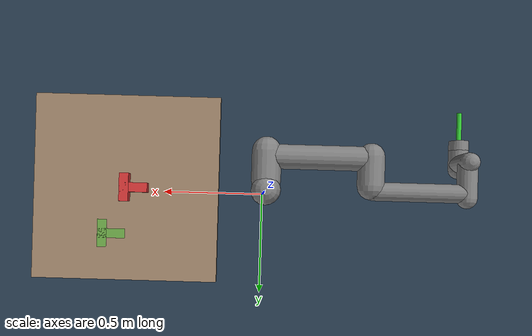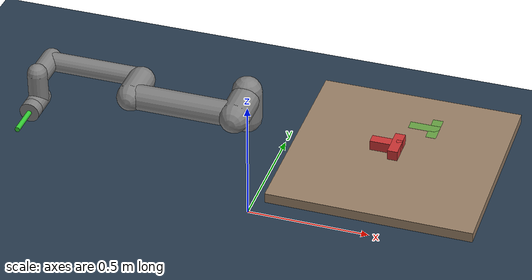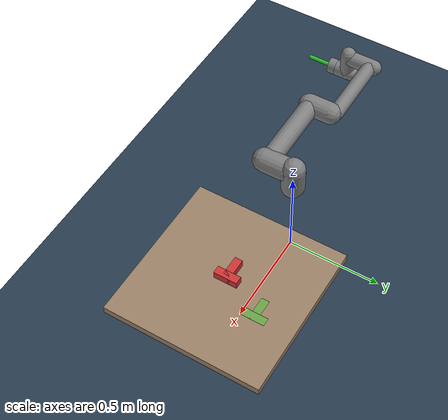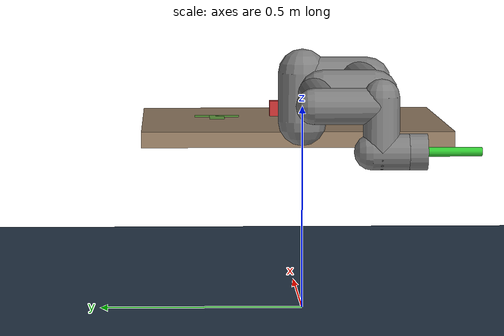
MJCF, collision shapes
<!-- MuJoCo XML for assets/ur5e_scene.xml -->
<mujoco model="ur5e_pusht_scene">
    <compiler angle="radian" coordinate="local"/>
    <option timestep="0.002" gravity="0 0 -9.81"/>

    <!-- 导入你的 UR5e 模型 -->
    <include file="/home/cyw/桌面/ur5e_pusht_dp_Ge/envs/assets/ur5e/ur5e.xml"/>

    <!-- 全局资产：材质、视觉贴图等 -->
    <asset>
        <texture type="skybox" builtin="gradient" rgb1="0.3 0.5 0.7" rgb2="0 0 0" width="512" height="512"/>
        <texture name="texplane" type="2d" builtin="checker" rgb1=".2 .3 .4" rgb2=".1 .15 .2" width="512" height="512"/>
        <material name="matplane" reflectance="0.3" texture="texplane" texrepeat="1 1" texuniform="true"/>
    </asset>

    <worldbody>
        <!-- 光照与地面 -->
        <light directional="true" diffuse=".8 .8 .8" specular=".2 .2 .2" pos="0 0 5" dir="0 0 -1"/>
        <geom name="floor" type="plane" size="0 0 1" pos="0 0 0" material="matplane" condim="3"/>

        <!-- 桌子：确保它在机械臂前方，且保持安全距离 -->
        <body name="table" pos="0.6 0 0.4">
            <!-- 桌腿和桌面可以通过多个 box geom 拼接，这里为了简便先用一个大 box 代替桌面 -->
            <geom name="table_top" type="box" size="0.4 0.4 0.02" rgba="0.6 0.5 0.4 1" friction="1 0.005 0.0001"/>
        </body>

        <!-- T 型物块：必须带有 freejoint 以便在物理世界中受力移动 -->
        <body name="t_cube" pos="0.6 0 0.45">
            <freejoint name="t_cube_joint"/>
            <!-- T 的横向部分 -->
            <geom name="t_bar_1" type="box" size="0.02 0.06 0.02" pos="0 0 0" rgba="0.8 0.2 0.2 1" mass="0.1" friction="1 0.005 0.0001"/>
            <!-- T 的纵向部分 -->
            <geom name="t_bar_2" type="box" size="0.06 0.02 0.02" pos="-0.04 0 0" rgba="0.8 0.2 0.2 1" mass="0.1" friction="1 0.005 0.0001"/>
        </body>

        <!-- 目标区域指示器 (纯视觉，无碰撞) -->
        <body name="target_zone" pos="0.7 0.2 0.421">
            <geom type="box" size="0.02 0.06 0.001" pos="0 0 0" rgba="0 1 0 0.3" contype="0" conaffinity="0"/>
            <geom type="box" size="0.06 0.02 0.001" pos="-0.04 0 0" rgba="0 1 0 0.3" contype="0" conaffinity="0"/>
        </body>

        <!-- 俯视相机：为 Diffusion Policy 提供全局视觉输入 -->
        <camera name="overhead_cam" pos="0.6 0 1.7" euler="0 0 0" fovy="60"/>
    </worldbody>
</mujoco>

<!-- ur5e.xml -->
<mujoco model="ur5e">
  <compiler angle="radian" meshdir="ur5e/assets" autolimits="true"/>

  <option integrator="implicitfast"/>

  <default>
    <default class="ur5e">
      <material specular="0.5" shininess="0.25"/>
      <joint axis="0 1 0" range="-6.28319 6.28319" armature="0.1"/>
      <general gaintype="fixed" biastype="affine" ctrlrange="-6.2831 6.2831" gainprm="2000" biasprm="0 -2000 -400"
        forcerange="-150 150"/>
      <default class="size3">
        <default class="size3_limited">
          <joint range="-3.1415 3.1415"/>
          <general ctrlrange="-3.1415 3.1415"/>
        </default>
      </default>
      <default class="size1">
        <general gainprm="500" biasprm="0 -500 -100" forcerange="-28 28"/>
      </default>
      <default class="visual">
        <geom type="mesh" contype="0" conaffinity="0" group="2"/>
      </default>
      <default class="collision">
        <geom type="capsule" group="3"/>
        <default class="eef_collision">
          <geom type="cylinder"/>
        </default>
      </default>
      <site size="0.001" rgba="0.5 0.5 0.5 0.3" group="4"/>
    </default>
  </default>

  <asset>
    <material class="ur5e" name="black" rgba="0.033 0.033 0.033 1"/>
    <material class="ur5e" name="jointgray" rgba="0.278 0.278 0.278 1"/>
    <material class="ur5e" name="linkgray" rgba="0.82 0.82 0.82 1"/>
    <material class="ur5e" name="urblue" rgba="0.49 0.678 0.8 1"/>

    <mesh file="base_0.obj"/>
    <mesh file="base_1.obj"/>
    <mesh file="shoulder_0.obj"/>
    <mesh file="shoulder_1.obj"/>
    <mesh file="shoulder_2.obj"/>
    <mesh file="upperarm_0.obj"/>
    <mesh file="upperarm_1.obj"/>
    <mesh file="upperarm_2.obj"/>
    <mesh file="upperarm_3.obj"/>
    <mesh file="forearm_0.obj"/>
    <mesh file="forearm_1.obj"/>
    <mesh file="forearm_2.obj"/>
    <mesh file="forearm_3.obj"/>
    <mesh file="wrist1_0.obj"/>
    <mesh file="wrist1_1.obj"/>
    <mesh file="wrist1_2.obj"/>
    <mesh file="wrist2_0.obj"/>
    <mesh file="wrist2_1.obj"/>
    <mesh file="wrist2_2.obj"/>
    <mesh file="wrist3.obj"/>
  </asset>

  <worldbody>
    <light name="spotlight" mode="targetbodycom" target="wrist_2_link" pos="0 -1 2"/>
    <body name="base" pos="0 0 0.4" quat="0 0 0 -1" childclass="ur5e">
      <inertial mass="4.0" pos="0 0 0" diaginertia="0.00443333156 0.00443333156 0.0072"/>
      <geom mesh="base_0" material="black" class="visual"/>
      <geom mesh="base_1" material="jointgray" class="visual"/>
      <body name="shoulder_link" pos="0 0 0.163">
        <inertial mass="3.7" pos="0 0 0" diaginertia="0.0102675 0.0102675 0.00666"/>
        <joint name="shoulder_pan_joint" class="size3" axis="0 0 1"/>
        <geom mesh="shoulder_0" material="urblue" class="visual"/>
        <geom mesh="shoulder_1" material="black" class="visual"/>
        <geom mesh="shoulder_2" material="jointgray" class="visual"/>
        <geom class="collision" size="0.06 0.06" pos="0 0 -0.04"/>
        <body name="upper_arm_link" pos="0 0.138 0" quat="1 0 1 0">
          <inertial mass="8.393" pos="0 0 0.2125" diaginertia="0.133886 0.133886 0.0151074"/>
          <joint name="shoulder_lift_joint" class="size3"/>
          <geom mesh="upperarm_0" material="linkgray" class="visual"/>
          <geom mesh="upperarm_1" material="black" class="visual"/>
          <geom mesh="upperarm_2" material="jointgray" class="visual"/>
          <geom mesh="upperarm_3" material="urblue" class="visual"/>
          <geom class="collision" pos="0 -0.04 0" quat="1 1 0 0" size="0.06 0.06"/>
          <geom class="collision" size="0.05 0.2" pos="0 0 0.2"/>
          <body name="forearm_link" pos="0 -0.131 0.425">
            <inertial mass="2.275" pos="0 0 0.196" diaginertia="0.0311796 0.0311796 0.004095"/>
            <joint name="elbow_joint" class="size3_limited"/>
            <geom mesh="forearm_0" material="urblue" class="visual"/>
            <geom mesh="forearm_1" material="linkgray" class="visual"/>
            <geom mesh="forearm_2" material="black" class="visual"/>
            <geom mesh="forearm_3" material="jointgray" class="visual"/>
            <geom class="collision" pos="0 0.08 0" quat="1 1 0 0" size="0.055 0.06"/>
            <geom class="collision" size="0.038 0.19" pos="0 0 0.2"/>
            <body name="wrist_1_link" pos="0 0 0.392" quat="1 0 1 0">
              <inertial mass="1.219" pos="0 0.127 0" diaginertia="0.0025599 0.0025599 0.0021942"/>
              <joint name="wrist_1_joint" class="size1"/>
              <geom mesh="wrist1_0" material="black" class="visual"/>
              <geom mesh="wrist1_1" material="urblue" class="visual"/>
              <geom mesh="wrist1_2" material="jointgray" class="visual"/>
              <geom class="collision" pos="0 0.05 0" quat="1 1 0 0" size="0.04 0.07"/>
              <body name="wrist_2_link" pos="0 0.127 0">
                <inertial mass="1.219" pos="0 0 0.1" diaginertia="0.0025599 0.0025599 0.0021942"/>
                <joint name="wrist_2_joint" axis="0 0 1" class="size1"/>
                <geom mesh="wrist2_0" material="black" class="visual"/>
                <geom mesh="wrist2_1" material="urblue" class="visual"/>
                <geom mesh="wrist2_2" material="jointgray" class="visual"/>
                <geom class="collision" size="0.04 0.06" pos="0 0 0.04"/>
                <geom class="collision" pos="0 0.02 0.1" quat="1 1 0 0" size="0.04 0.04"/>
                <body name="wrist_3_link" pos="0 0 0.1">
                  <inertial mass="0.1889" pos="0 0.0771683 0" quat="1 0 0 1"
                    diaginertia="0.000132134 9.90863e-05 9.90863e-05"/>
                  <joint name="wrist_3_joint" class="size1"/>
                  <geom material="linkgray" mesh="wrist3" class="visual"/>
                  <geom class="eef_collision" pos="0 0.08 0" quat="1 1 0 0" size="0.04 0.02"/>

                  <geom name="pusher_visual" type="cylinder" size="0.01 0.06" pos="0 0.16 0" quat="-1 1 0 0" rgba="0.2 0.8 0.2 1" contype="0" conaffinity="0"/>
                  <geom name="pusher_collision" type="cylinder" size="0.01 0.06" pos="0 0.16 0" quat="-1 1 0 0" mass="0.1" friction="1 0.005 0.0001"/>

                  <body name="pusher_tip_body" pos="0 0.22 0">
                      <site name="attachment_site" quat="-1 1 0 0" size="0.005" rgba="1 0 0 1"/>
                  </body>

                  <camera name="wrist_cam" pos="-0.010 0.108 0.20" target="pusher_tip_body" fovy="75"/>
                </body>
              </body>
            </body>
          </body>
        </body>
      </body>
    </body>
  </worldbody>

  <actuator>
    <general class="size3" name="shoulder_pan" joint="shoulder_pan_joint"/>
    <general class="size3" name="shoulder_lift" joint="shoulder_lift_joint"/>
    <general class="size3_limited" name="elbow" joint="elbow_joint"/>
    <general class="size1" name="wrist_1" joint="wrist_1_joint"/>
    <general class="size1" name="wrist_2" joint="wrist_2_joint"/>
    <general class="size1" name="wrist_3" joint="wrist_3_joint"/>
  </actuator>

  <keyframe>
    <key name="home" qpos="-1.5708 -1.5708 1.5708 -1.5708 -1.5708 0" ctrl="-1.5708 -1.5708 1.5708 -1.5708 -1.5708 0"/>
  </keyframe>
</mujoco>
